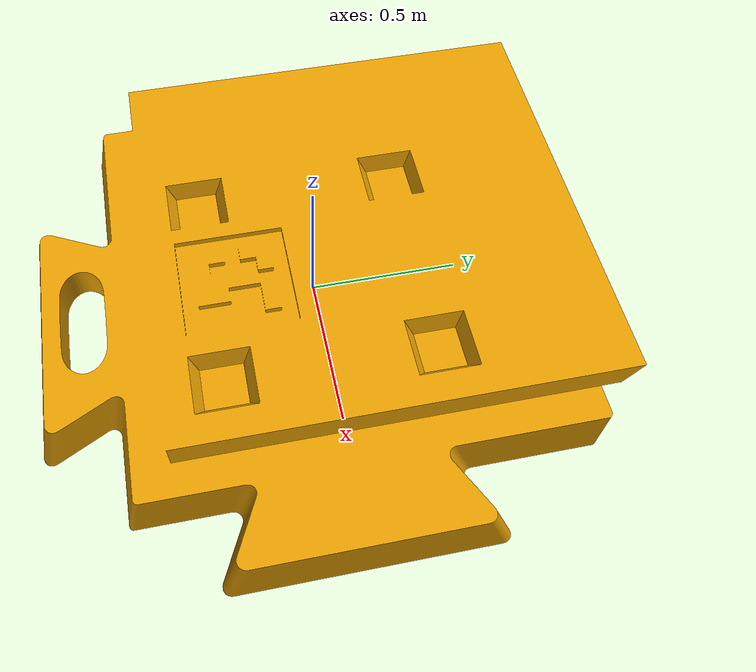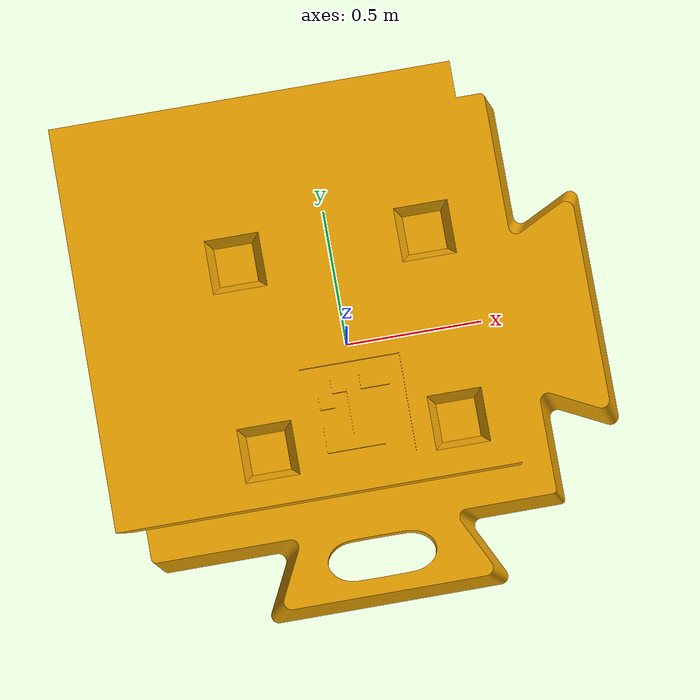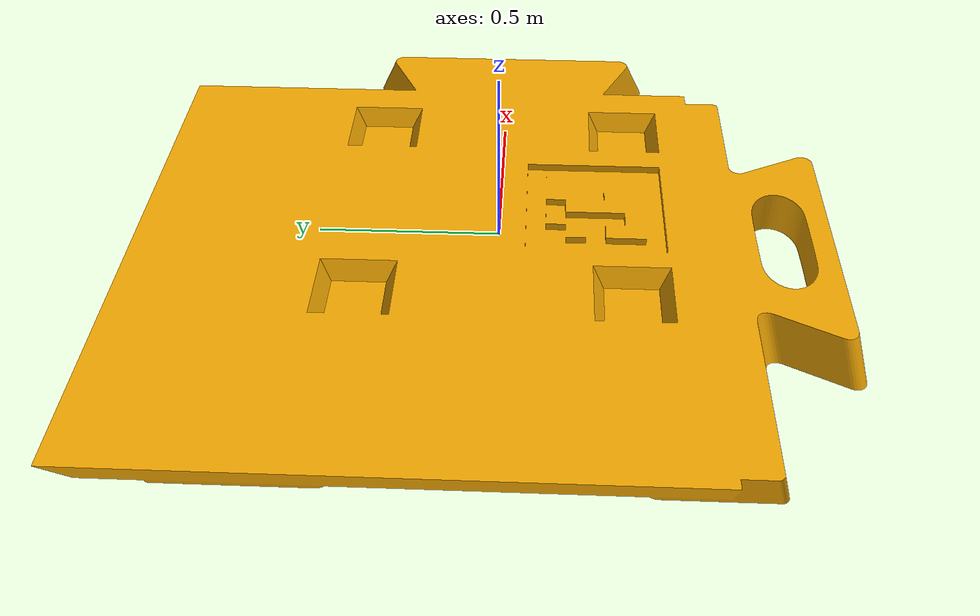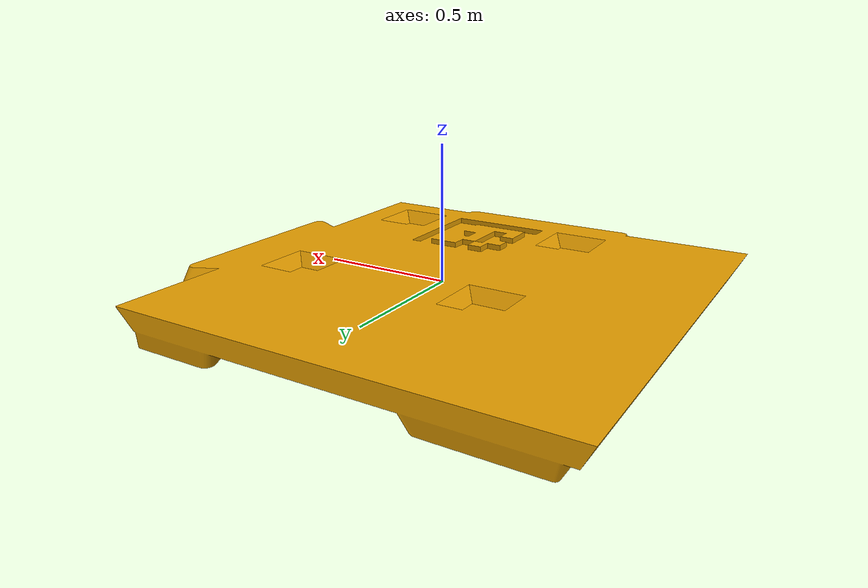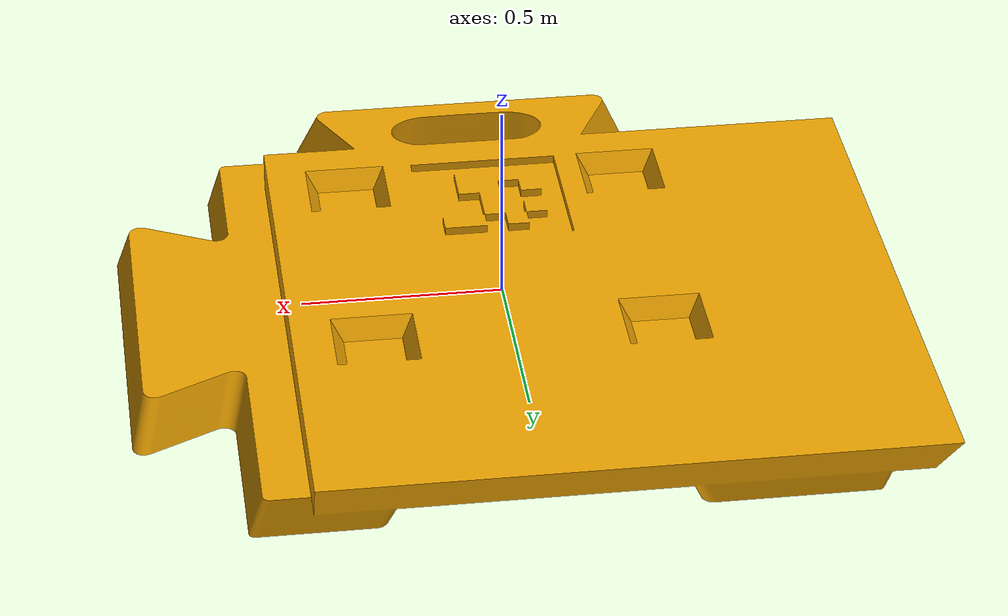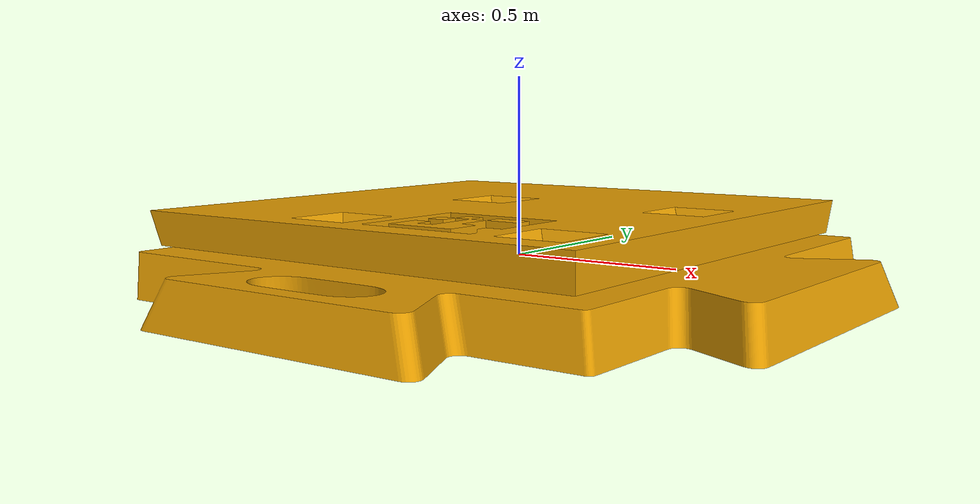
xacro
<?xml version='1.0'?>

<robot name="paver" xmlns:xacro="http://www.ros.org/wiki/xacro">

  <xacro:property name="paverSize" value="0.01"/>
  <xacro:property name="paverMass" value="1"/>

  <link name="paver_link">
    <visual name="paver_visual">
      <origin xyz="0 0 0" rpy="0 0 0"/>
      <geometry>
        <mesh filename="file://$(find rover_description)/meshes/paver.dae" scale="0.01 0.01 0.01"/>
      </geometry>
    </visual>
    <collision name="paver_collision">
      <origin xyz="0 0 0" rpy="0 0 0"/>
      <geometry>
        <mesh filename="file://$(find rover_description)/meshes/paver.dae" scale="0.01 0.01 0.01"/>
      </geometry>
      <surface>
        <friction>
          <mu>0.5</mu>
          <mu2>0.5</mu2>
        </friction>
      </surface>
    </collision>
    <inertial>
      <origin xyz="0 0 0" rpy="0 0 0"/>
      <mass value="${paverMass}"/>
      <inertia ixx="0.329" ixy="0" ixz="0" iyy="0.329" iyz="0" izz="0.625"/>
    </inertial>
  </link>

  <gazebo reference="paver_link">
    <selfCollide>1</selfCollide>
    <mu1 value="0.5"/>
    <mu2 value="0.5"/>
    <kp value="10000000.0" />
    <kd value="1.0" />
    <fdir1 value="1 0 0"/>
  </gazebo>

</robot>
